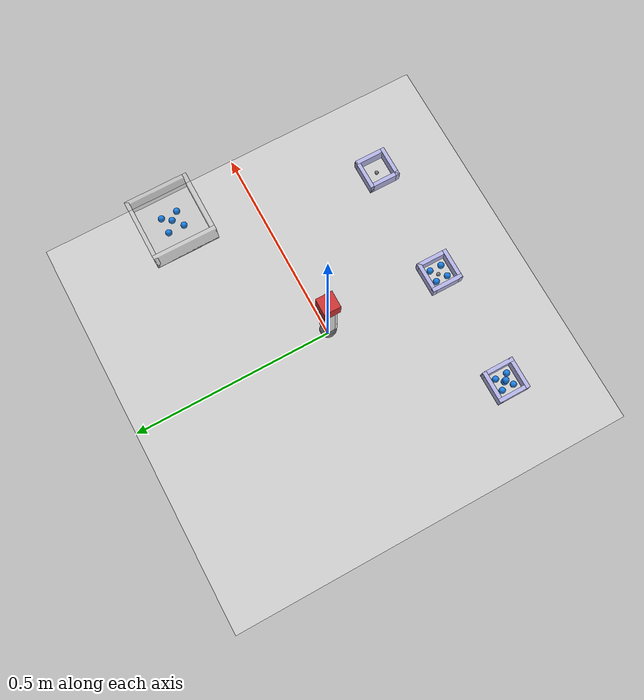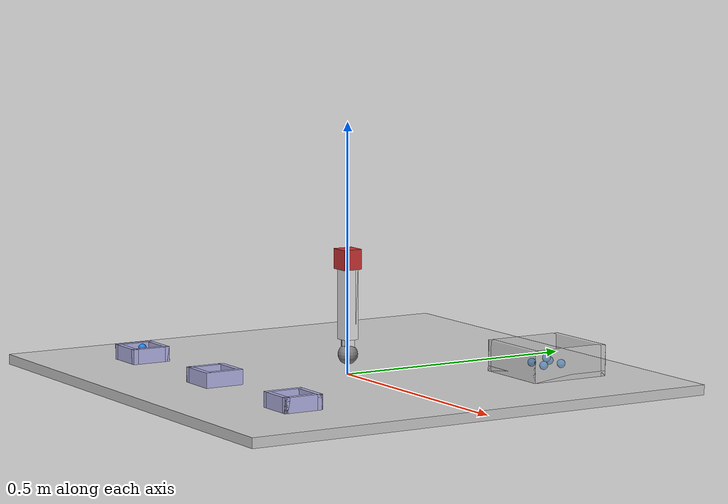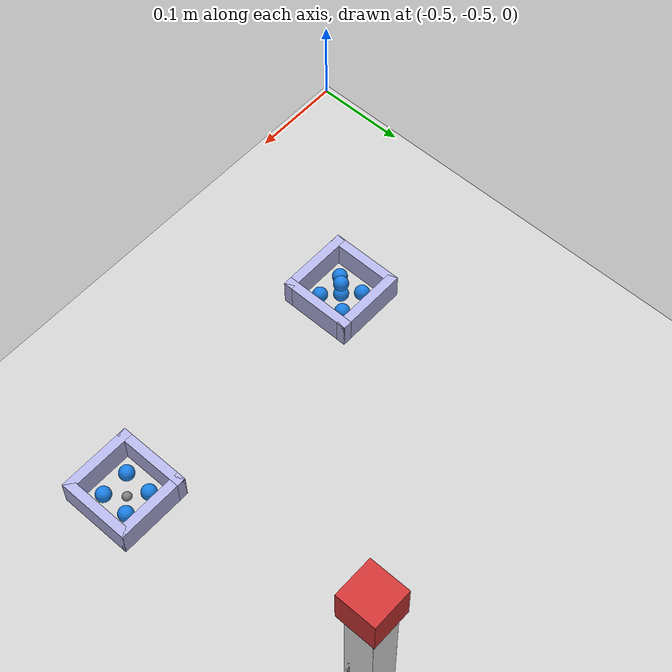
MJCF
<?xml version="1.0" encoding="utf-8"?>
<mujoco model="particle_pipette_system">
    <compiler angle="radian" coordinate="local" meshdir="../meshes" texturedir="../textures"/>
    <option timestep="0.001" iterations="100" solver="Newton" tolerance="1e-10" gravity="0 0 -9.81"/>

    <size nconmax="1000" njmax="2000" nstack="1000000"/>

    <asset>
        <material name="well_material" rgba="0.7 0.7 0.9 1"/>
        <material name="pipette_material" rgba="0.9 0.9 0.9 1"/>
        <material name="machine_material" rgba="0.5 0.5 0.5 1"/>
        <material name="surface_material" rgba="0.8 0.8 0.8 1"/>
        <material name="particle_material" rgba="0.1 0.5 0.9 0.9"/>
        <material name="container_material" rgba="0.8 0.8 0.8 0.6"/>
        <material name="plunger_material" rgba="0.8 0.2 0.2 1"/>
        <material name="transparent_wall" rgba="0.9 0.9 0.9 0.3"/>
    </asset>

    <default>
        <geom friction="0.5 0.1 0.1" solimp="0.9 0.95 0.001" solref="0.02 1"/>
        <joint damping="0.1"/>
    </default>

    <worldbody>
        <!-- Lighting and camera -->
        <light directional="true" diffuse=".8 .8 .8" specular=".2 .2 .2" pos="0 0 5" dir="0 0 -1"/>
        <camera name="top_view" pos="0 0 1.5" xyaxes="1 0 0 0 1 0"/>
        <camera name="side_view" pos="1.0 0 0.5" xyaxes="0 1 0 0 0 1"/>

        <!-- Surface -->
        <body name="surface" pos="0 0 0">
            <geom type="box" size="0.5 0.5 0.01" rgba="0.8 0.8 0.8 1" material="surface_material"/>
        </body>

        <!-- Square wells made with box walls -->
        <body name="well_1" pos="-0.3 -0.3 0.01">
            <!-- Well bottom -->
            <geom name="well_1_bottom" type="box" size="0.035 0.035 0.005" pos="0 0 -0.025" material="well_material"/>
            <!-- Well walls (creating hollow square) -->
            <geom name="well_1_wall_n" type="box" size="0.04 0.005 0.03" pos="0 0.035 0" material="well_material"/>
            <geom name="well_1_wall_s" type="box" size="0.04 0.005 0.03" pos="0 -0.035 0" material="well_material"/>
            <geom name="well_1_wall_e" type="box" size="0.005 0.04 0.03" pos="0.035 0 0" material="well_material"/>
            <geom name="well_1_wall_w" type="box" size="0.005 0.04 0.03" pos="-0.035 0 0" material="well_material"/>
            <site name="well_1_site" pos="0 0 0" size="0.005"/>
        </body>

        <body name="well_2" pos="0 -0.3 0.01">
            <geom name="well_2_bottom" type="box" size="0.035 0.035 0.005" pos="0 0 -0.025" material="well_material"/>
            <geom name="well_2_wall_n" type="box" size="0.04 0.005 0.03" pos="0 0.035 0" material="well_material"/>
            <geom name="well_2_wall_s" type="box" size="0.04 0.005 0.03" pos="0 -0.035 0" material="well_material"/>
            <geom name="well_2_wall_e" type="box" size="0.005 0.04 0.03" pos="0.035 0 0" material="well_material"/>
            <geom name="well_2_wall_w" type="box" size="0.005 0.04 0.03" pos="-0.035 0 0" material="well_material"/>
            <site name="well_2_site" pos="0 0 0" size="0.005"/>
        </body>

        <body name="well_3" pos="0.3 -0.3 0.01">
            <geom name="well_3_bottom" type="box" size="0.035 0.035 0.005" pos="0 0 -0.025" material="well_material"/>
            <geom name="well_3_wall_n" type="box" size="0.04 0.005 0.03" pos="0 0.035 0" material="well_material"/>
            <geom name="well_3_wall_s" type="box" size="0.04 0.005 0.03" pos="0 -0.035 0" material="well_material"/>
            <geom name="well_3_wall_e" type="box" size="0.005 0.04 0.03" pos="0.035 0 0" material="well_material"/>
            <geom name="well_3_wall_w" type="box" size="0.005 0.04 0.03" pos="-0.035 0 0" material="well_material"/>
            <site name="well_3_site" pos="0 0 0" size="0.005"/>
        </body>

        <!-- Container for loose particles -->
        <body name="particle_container" pos="0.4 0.2 0.05">
            <geom name="container_bottom" type="box" size="0.08 0.08 0.005" pos="0 0 0" material="container_material"/>
            <geom name="container_wall_1" type="box" size="0.005 0.08 0.03" pos="0.075 0 0.025" material="container_material"/>
            <geom name="container_wall_2" type="box" size="0.005 0.08 0.03" pos="-0.075 0 0.025" material="container_material"/>
            <geom name="container_wall_3" type="box" size="0.08 0.005 0.03" pos="0 0.075 0.025" material="container_material"/>
            <geom name="container_wall_4" type="box" size="0.08 0.005 0.03" pos="0 -0.075 0.025" material="container_material"/>
        </body>

        <!-- Particles in wells -->
        <body name="particle_1_1" pos="-0.315 -0.315 0.017">
            <freejoint/>
            <geom name="p_1_1" type="sphere" size="0.008" material="particle_material" mass="0.01"/>
        </body>
        <body name="particle_1_2" pos="-0.285 -0.315 0.017">
            <freejoint/>
            <geom name="p_1_2" type="sphere" size="0.008" material="particle_material" mass="0.01"/>
        </body>
        <body name="particle_1_3" pos="-0.315 -0.285 0.017">
            <freejoint/>
            <geom name="p_1_3" type="sphere" size="0.008" material="particle_material" mass="0.01"/>
        </body>
        <body name="particle_1_4" pos="-0.285 -0.285 0.017">
            <freejoint/>
            <geom name="p_1_4" type="sphere" size="0.008" material="particle_material" mass="0.01"/>
        </body>
        <body name="particle_1_5" pos="-0.3 -0.3 0.017">
            <freejoint/>
            <geom name="p_1_5" type="sphere" size="0.008" material="particle_material" mass="0.01"/>
        </body>
        <body name="particle_1_6" pos="-0.3 -0.3 0.035">
            <freejoint/>
            <geom name="p_1_6" type="sphere" size="0.008" material="particle_material" mass="0.01"/>
        </body>

        <body name="particle_2_1" pos="-0.015 -0.315 0.017">
            <freejoint/>
            <geom name="p_2_1" type="sphere" size="0.008" material="particle_material" mass="0.01"/>
        </body>
        <body name="particle_2_2" pos="0.015 -0.315 0.017">
            <freejoint/>
            <geom name="p_2_2" type="sphere" size="0.008" material="particle_material" mass="0.01"/>
        </body>
        <body name="particle_2_3" pos="-0.015 -0.285 0.017">
            <freejoint/>
            <geom name="p_2_3" type="sphere" size="0.008" material="particle_material" mass="0.01"/>
        </body>
        <body name="particle_2_4" pos="0.015 -0.285 0.017">
            <freejoint/>
            <geom name="p_2_4" type="sphere" size="0.008" material="particle_material" mass="0.01"/>
        </body>

        <!-- Loose particles in container -->
        <body name="loose_particle_1" pos="0.38 0.18 0.065">
            <freejoint/>
            <geom name="lp_1" type="sphere" size="0.008" material="particle_material" mass="0.01"/>
        </body>
        <body name="loose_particle_2" pos="0.42 0.18 0.065">
            <freejoint/>
            <geom name="lp_2" type="sphere" size="0.008" material="particle_material" mass="0.01"/>
        </body>
        <body name="loose_particle_3" pos="0.38 0.22 0.065">
            <freejoint/>
            <geom name="lp_3" type="sphere" size="0.008" material="particle_material" mass="0.01"/>
        </body>
        <body name="loose_particle_4" pos="0.42 0.22 0.065">
            <freejoint/>
            <geom name="lp_4" type="sphere" size="0.008" material="particle_material" mass="0.01"/>
        </body>
        <body name="loose_particle_5" pos="0.4 0.2 0.075">
            <freejoint/>
            <geom name="lp_5" type="sphere" size="0.008" material="particle_material" mass="0.01"/>
        </body>

        <!-- Box-based pipette system -->
        <body name="pipette_base" pos="0 0 0.2">
            <!-- XY movement -->
            <joint name="machine_x" type="slide" axis="1 0 0" range="-0.4 0.4" damping="20"/>
            <joint name="machine_y" type="slide" axis="0 1 0" range="-0.4 0.4" damping="20"/>

            <!-- Base mass (invisible but necessary for joints) -->
            <inertial pos="0 0 0" mass="1.0" diaginertia="0.1 0.1 0.1"/>

            <!-- Plunger mechanism (stays at base level) -->
            <body name="plunger" pos="0 0 0.03">
                <joint name="plunger_joint" type="slide" axis="0 0 1" range="0 0.3" damping="5"/>

                <!-- Square plunger head (visible on top) -->
                <geom name="plunger_head" type="box" size="0.02 0.02 0.02" pos="0 0 0" material="plunger_material" mass="0.2"/>

                <!-- Variable length plunger rod - extends based on plunger position -->
                <geom name="plunger_rod" type="box" size="0.006 0.006 0.08" pos="0 0 -0.08" material="plunger_material" mass="0.1"/>

                <!-- Plunger seal at end of rod -->
                <geom name="plunger_seal" type="box" size="0.009 0.009 0.003" pos="0 0 -0.16" material="plunger_material" mass="0.05"/>
            </body>

            <!-- Z movement for pipette body (completely independent) -->
            <body name="pipette_body" pos="0 0 0">
                <joint name="machine_z" type="slide" axis="0 0 1" range="-0.3 0.1" damping="15"/>

                <!-- Body mass (necessary for Z movement joint) -->
                <inertial pos="0 0 -0.05" mass="0.8" diaginertia="0.05 0.05 0.05"/>

                <!-- Hollow rectangular pipette body made with walls -->
                <!-- Outer walls -->
                <geom name="pipette_wall_n" type="box" size="0.015 0.003 0.08" pos="0 0.012 -0.05" material="pipette_material" mass="0.1"/>
                <geom name="pipette_wall_s" type="box" size="0.015 0.003 0.08" pos="0 -0.012 -0.05" material="pipette_material" mass="0.1"/>
                <geom name="pipette_wall_e" type="box" size="0.003 0.015 0.08" pos="0.012 0 -0.05" material="pipette_material" mass="0.1"/>
                <geom name="pipette_wall_w" type="box" size="0.003 0.015 0.08" pos="-0.012 0 -0.05" material="pipette_material" mass="0.1"/>

                <!-- Transparent inner chamber walls (smaller, creating hollow space) -->
                <geom name="chamber_wall_n" type="box" size="0.01 0.002 0.075" pos="0 0.008 -0.045" material="transparent_wall"/>
                <geom name="chamber_wall_s" type="box" size="0.01 0.002 0.075" pos="0 -0.008 -0.045" material="transparent_wall"/>
                <geom name="chamber_wall_e" type="box" size="0.002 0.01 0.075" pos="0.008 0 -0.045" material="transparent_wall"/>
                <geom name="chamber_wall_w" type="box" size="0.002 0.01 0.075" pos="-0.008 0 -0.045" material="transparent_wall"/>

                <!-- Pipette tip (hollow square tube) -->
                <geom name="tip_wall_n" type="box" size="0.01 0.002 0.03" pos="0 0.008 -0.13" material="pipette_material" mass="0.05"/>
                <geom name="tip_wall_s" type="box" size="0.01 0.002 0.03" pos="0 -0.008 -0.13" material="pipette_material" mass="0.05"/>
                <geom name="tip_wall_e" type="box" size="0.002 0.01 0.03" pos="0.008 0 -0.13" material="pipette_material" mass="0.05"/>
                <geom name="tip_wall_w" type="box" size="0.002 0.01 0.03" pos="-0.008 0 -0.13" material="pipette_material" mass="0.05"/>

                <!-- Suction zone at tip -->
                <site name="suction_zone" pos="0 0 -0.16" size="0.02"/>
            </body>
        </body>
    </worldbody>

    <actuator>
        <!-- Movement controls -->
        <position name="x_control" joint="machine_x" ctrlrange="-0.4 0.4" kp="100"/>
        <position name="y_control" joint="machine_y" ctrlrange="-0.4 0.4" kp="100"/>
        <position name="z_control" joint="machine_z" ctrlrange="-0.3 0.1" kp="100"/>

        <!-- Plunger control -->
        <position name="plunger_control" joint="plunger_joint" ctrlrange="-0.4 0.08" kp="50"/>
    </actuator>

    <sensor>
        <!-- Position sensors -->
        <jointpos name="x_pos" joint="machine_x"/>
        <jointpos name="y_pos" joint="machine_y"/>
        <jointpos name="z_pos" joint="machine_z"/>
        <jointpos name="plunger_pos" joint="plunger_joint"/>

        <!-- Velocity sensors -->
        <jointvel name="plunger_vel" joint="plunger_joint"/>

        <!-- Site sensors -->
        <framepos name="suction_sensor" objtype="site" objname="suction_zone"/>

        <!-- Well position sensors -->
        <framepos name="well_1_sensor" objtype="site" objname="well_1_site"/>
        <framepos name="well_2_sensor" objtype="site" objname="well_2_site"/>
        <framepos name="well_3_sensor" objtype="site" objname="well_3_site"/>
    </sensor>
</mujoco>
